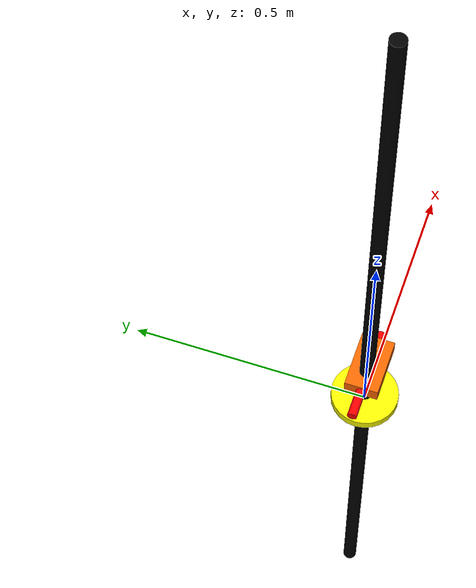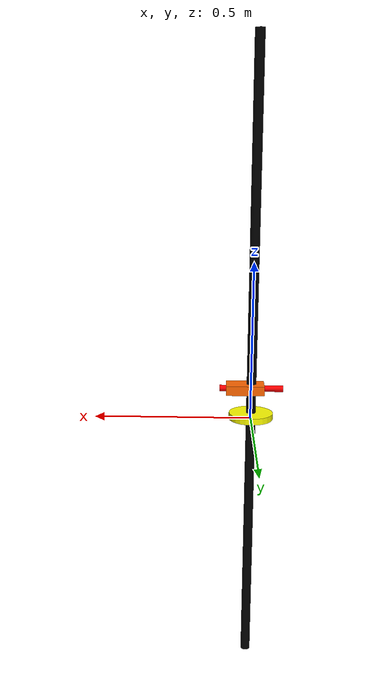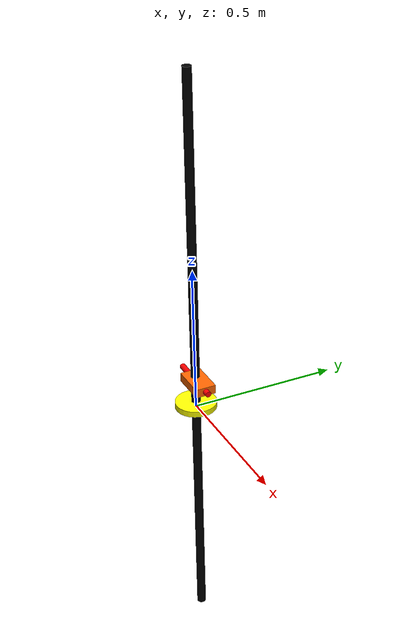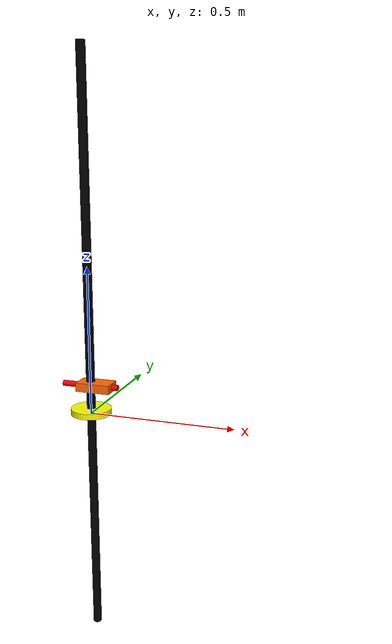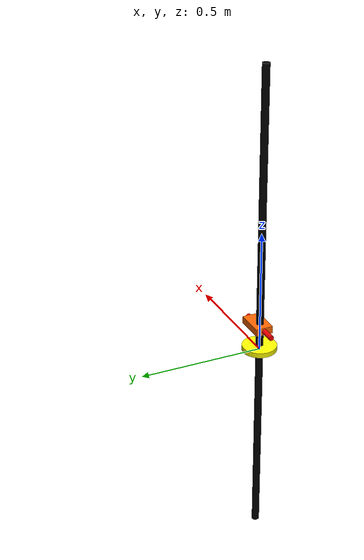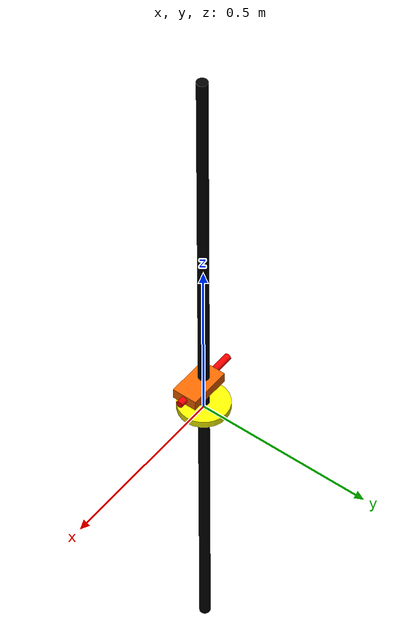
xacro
<?xml version="1.0" ?>
<robot name="testbot">

  <material name="black">
    <color rgba="0.0 0.0 0.0 1.0"/>
  </material>
  <material name="orange">
    <color rgba="1.0 0.4 0.0 1.0"/>
  </material>

  <link name="base">
    <visual>
        <geometry>
            <cylinder length="0.02" radius="0.07"/>
        </geometry>
        <origin rpy="0 0 0" xyz="0 0 0.01"/>
        <material name="yellow">
            <color rgba="1 1 0 1"/>
        </material>
    </visual>

    <collision>
        <geometry>
            <cylinder length="0.02" radius="0.07"/>
        </geometry>
        <origin rpy="0 0 0" xyz="0 0 0.01"/>
    </collision>

      <inertial>
        <mass value="1"/>
        <inertia ixx="0.0" ixy="0.0" ixz="0.0" iyy="0.0" iyz="0.0" izz="0.0"/>
      </inertial>
  </link>

  <joint name="joint1" type="continuous">
    <parent link="base"/>
    <child link="link1"/>
    <origin xyz="0 0 0" rpy="0 0 0"/>
    <axis xyz="0 0 0"/>
    <limit effort="30" lower="-2.617" upper="2.617" velocity="1.571"/>
  </joint>

  <link name="link1">
    <collision>
      <origin xyz="0 0 0.17" rpy="0 0 0"/>
      <geometry>
        <cylinder length="2" radius="0.015"/>
      </geometry>
    </collision>
    <visual>
	    <origin xyz="0 0 0.17" rpy="0 0 0"/>
      <geometry>
        <cylinder length="2" radius="0.015"/>
      </geometry>
      <material name="black"/>
    </visual>
    <inertial>
      <origin xyz="0 0 0" rpy="0 0 0"/>
      <mass value="1"/>
      <inertia ixx="0.0" ixy="0.0" ixz="0.0" iyy="0.0" iyz="0.0" izz="0.0"/>
    </inertial>
  </link>

<joint name="fixed" type="fixed">
    <parent link="link1"/>
    <child link="link2"/>
  </joint>

  <link name="link2">
    <collision>
      <origin xyz="0.02 0 0.1" rpy="0 0 0"/>
      <geometry>
        <box size="0.12 0.07 0.03"/>
      </geometry>
    </collision>
    <visual>
      <origin xyz="0.02 0 0.1" rpy="0 0 0"/>
      <geometry>
        <box size="0.12 0.07 0.03"/>
      </geometry>
      <material name="orange"/>
    </visual>
    <inertial>
      <origin xyz="0 0 0" rpy="0 0 0"/>
      <mass value="1"/>
      <inertia ixx="0.0" ixy="0.0" ixz="0.0" iyy="0.0" iyz="0.0" izz="0.0"/>
    </inertial>
  </link>

  <joint name="joint2" type="fixed">
    <parent link="link2"/>
    <child link="link3"/>
    <origin xyz="0 0 0" rpy="0 0 0"/>
    <axis xyz="0 0 0"/>
    <limit effort="30" lower="-1.317" upper="1.687" velocity="1.571"/>
  </joint>

  <link name="link3">
    <collision>
      <origin xyz="0 0 0.1" rpy="0 1.57 0"/>
      <geometry>
        <cylinder length="0.2" radius="0.01"/>
      </geometry>
    </collision>
    <visual>
      <origin xyz="0 0 0.1" rpy= "0 1.57 0"/>
      <geometry>
        <cylinder length="0.2" radius="0.01"/>
      </geometry>
      <material name="red">
          <color rgba="1 0 0 1"/>
      </material>
    </visual>
    <inertial>
      <origin xyz="0 0 0" rpy="0 0 0"/>
      <mass value="1"/>
      <inertia ixx="1.0" ixy="0.0" ixz="0.0" iyy="1.0" iyz="0.0" izz="1.0"/>
    </inertial>
  </link>

</robot>
